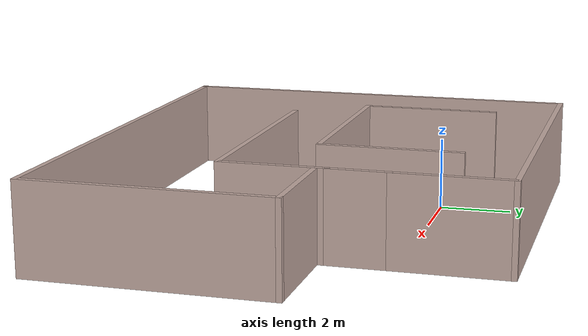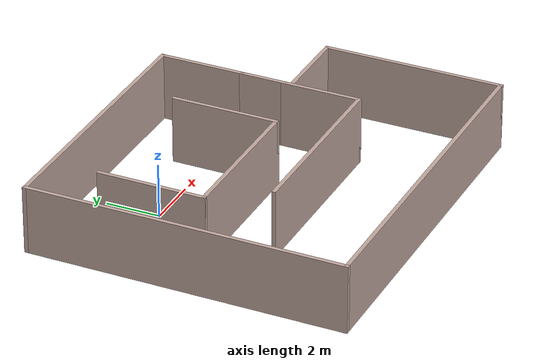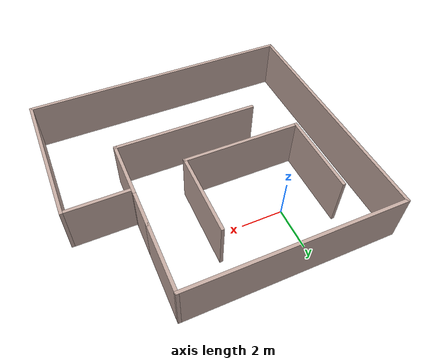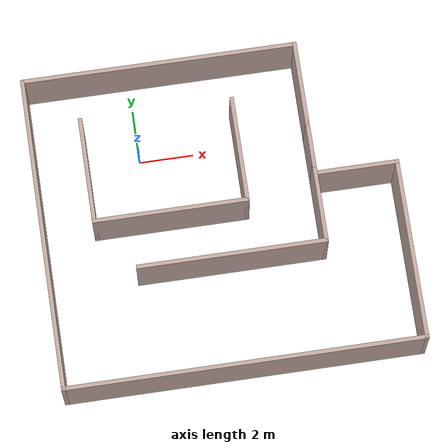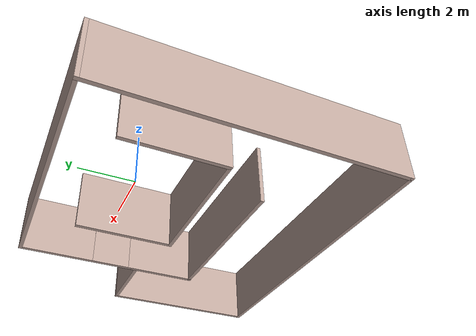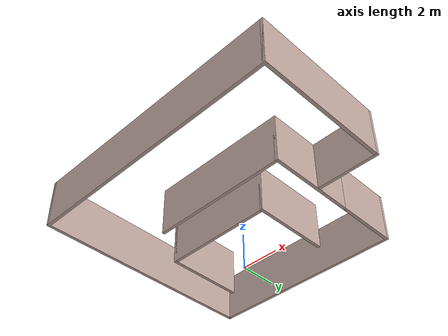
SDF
<?xml version='1.0'?>
<sdf version='1.7'>
  <model name='Untitled'>
    <pose>2.67217 -2.85261 0 0 -0 0</pose>
    <link name='Wall_10'>
      <collision name='Wall_10_Collision'>
        <geometry>
          <box>
            <size>11.75 0.15 2.5</size>
          </box>
        </geometry>
        <pose>0 0 1.25 0 -0 0</pose>
      </collision>
      <visual name='Wall_10_Visual'>
        <pose>0 0 1.25 0 -0 0</pose>
        <geometry>
          <box>
            <size>11.75 0.15 2.5</size>
          </box>
        </geometry>
        <material>
          <script>
            <uri>file://media/materials/scripts/gazebo.material</uri>
            <name>Gazebo/Grey</name>
          </script>
          <ambient>0.760784 0.662745 0.627451 1</ambient>
        </material>
        <meta>
          <layer>0</layer>
        </meta>
      </visual>
      <pose>-6.55 0 0 0 -0 -1.5708</pose>
    </link>
    <link name='Wall_11'>
      <collision name='Wall_11_Collision'>
        <geometry>
          <box>
            <size>13.25 0.15 2.5</size>
          </box>
        </geometry>
        <pose>0 0 1.25 0 -0 0</pose>
      </collision>
      <visual name='Wall_11_Visual'>
        <pose>0 0 1.25 0 -0 0</pose>
        <geometry>
          <box>
            <size>13.25 0.15 2.5</size>
          </box>
        </geometry>
        <material>
          <script>
            <uri>file://media/materials/scripts/gazebo.material</uri>
            <name>Gazebo/Grey</name>
          </script>
          <ambient>0.760784 0.662745 0.627451 1</ambient>
        </material>
        <meta>
          <layer>0</layer>
        </meta>
      </visual>
      <pose>0 -5.8 0 0 -0 0</pose>
    </link>
    <link name='Wall_12'>
      <collision name='Wall_12_Collision'>
        <geometry>
          <box>
            <size>6.75 0.15 2.5</size>
          </box>
        </geometry>
        <pose>0 0 1.25 0 -0 0</pose>
      </collision>
      <visual name='Wall_12_Visual'>
        <pose>0 0 1.25 0 -0 0</pose>
        <geometry>
          <box>
            <size>6.75 0.15 2.5</size>
          </box>
        </geometry>
        <material>
          <script>
            <uri>file://media/materials/scripts/gazebo.material</uri>
            <name>Gazebo/Grey</name>
          </script>
          <ambient>0.760784 0.662745 0.627451 1</ambient>
        </material>
        <meta>
          <layer>0</layer>
        </meta>
      </visual>
      <pose>6.55 -2.5 0 0 -0 1.5708</pose>
    </link>
    <link name='Wall_13'>
      <collision name='Wall_13_Collision'>
        <geometry>
          <box>
            <size>3 0.15 2.5</size>
          </box>
        </geometry>
        <pose>0 0 1.25 0 -0 0</pose>
      </collision>
      <visual name='Wall_13_Visual'>
        <pose>0 0 1.25 0 -0 0</pose>
        <geometry>
          <box>
            <size>3 0.15 2.5</size>
          </box>
        </geometry>
        <material>
          <script>
            <uri>file://media/materials/scripts/gazebo.material</uri>
            <name>Gazebo/Grey</name>
          </script>
          <ambient>0.760784 0.662745 0.627451 1</ambient>
        </material>
        <meta>
          <layer>0</layer>
        </meta>
      </visual>
      <pose>5.125 0.8 0 0 -0 3.14159</pose>
    </link>
    <link name='Wall_15'>
      <collision name='Wall_15_Collision'>
        <geometry>
          <box>
            <size>4 0.15 2.5</size>
          </box>
        </geometry>
        <pose>0 0 1.25 0 -0 0</pose>
      </collision>
      <visual name='Wall_15_Visual'>
        <pose>0 0 1.25 0 -0 0</pose>
        <geometry>
          <box>
            <size>4 0.15 2.5</size>
          </box>
        </geometry>
        <material>
          <script>
            <uri>file://media/materials/scripts/gazebo.material</uri>
            <name>Gazebo/Grey</name>
          </script>
          <ambient>0.760784 0.662745 0.627451 1</ambient>
        </material>
        <meta>
          <layer>0</layer>
        </meta>
      </visual>
      <pose>-4.6463 2.10211 0 0 -0 -1.5708</pose>
    </link>
    <link name='Wall_16'>
      <collision name='Wall_16_Collision'>
        <geometry>
          <box>
            <size>5.75 0.15 2.5</size>
          </box>
        </geometry>
        <pose>0 0 1.25 0 -0 0</pose>
      </collision>
      <visual name='Wall_16_Visual'>
        <pose>0 0 1.25 0 -0 0</pose>
        <geometry>
          <box>
            <size>5.75 0.15 2.5</size>
          </box>
        </geometry>
        <material>
          <script>
            <uri>file://media/materials/scripts/gazebo.material</uri>
            <name>Gazebo/Grey</name>
          </script>
          <ambient>0.760784 0.662745 0.627451 1</ambient>
        </material>
        <meta>
          <layer>0</layer>
        </meta>
      </visual>
      <pose>-1.8463 0.17711 0 0 -0 0</pose>
    </link>
    <link name='Wall_17'>
      <collision name='Wall_17_Collision'>
        <geometry>
          <box>
            <size>4 0.15 2.5</size>
          </box>
        </geometry>
        <pose>0 0 1.25 0 -0 0</pose>
      </collision>
      <visual name='Wall_17_Visual'>
        <pose>0 0 1.25 0 -0 0</pose>
        <geometry>
          <box>
            <size>4 0.15 2.5</size>
          </box>
        </geometry>
        <material>
          <script>
            <uri>file://media/materials/scripts/gazebo.material</uri>
            <name>Gazebo/Grey</name>
          </script>
          <ambient>0.760784 0.662745 0.627451 1</ambient>
        </material>
        <meta>
          <layer>0</layer>
        </meta>
      </visual>
      <pose>0.953698 2.10211 0 0 -0 1.5708</pose>
    </link>
    <link name='Wall_3'>
      <collision name='Wall_3_Collision'>
        <geometry>
          <box>
            <size>7 0.15 2.5</size>
          </box>
        </geometry>
        <pose>0 0 1.25 0 -0 0</pose>
      </collision>
      <visual name='Wall_3_Visual'>
        <pose>0 0 1.25 0 -0 0</pose>
        <geometry>
          <box>
            <size>7 0.15 2.5</size>
          </box>
        </geometry>
        <material>
          <script>
            <uri>file://media/materials/scripts/gazebo.material</uri>
            <name>Gazebo/Grey</name>
          </script>
          <ambient>0.760784 0.662745 0.627451 1</ambient>
        </material>
        <meta>
          <layer>0</layer>
        </meta>
      </visual>
      <pose>0.125 -1.75 0 0 -0 0</pose>
    </link>
    <link name='Wall_4'>
      <collision name='Wall_4_Collision'>
        <geometry>
          <box>
            <size>3 0.15 2.5</size>
          </box>
        </geometry>
        <pose>0 0 1.25 0 -0 0</pose>
      </collision>
      <visual name='Wall_4_Visual'>
        <pose>0 0 1.25 0 -0 0</pose>
        <geometry>
          <box>
            <size>3 0.15 2.5</size>
          </box>
        </geometry>
        <material>
          <script>
            <uri>file://media/materials/scripts/gazebo.material</uri>
            <name>Gazebo/Grey</name>
          </script>
          <ambient>0.760784 0.662745 0.627451 1</ambient>
        </material>
        <meta>
          <layer>0</layer>
        </meta>
      </visual>
      <pose>3.55 -0.325 0 0 -0 1.5708</pose>
    </link>
    <link name='Wall_7'>
      <collision name='Wall_7_Collision'>
        <geometry>
          <box>
            <size>1.75 0.15 2.5</size>
          </box>
        </geometry>
        <pose>0 0 1.25 0 -0 0</pose>
      </collision>
      <visual name='Wall_7_Visual'>
        <pose>0 0 1.25 0 -0 0</pose>
        <geometry>
          <box>
            <size>1.75 0.15 2.5</size>
          </box>
        </geometry>
        <material>
          <script>
            <uri>file://media/materials/scripts/gazebo.material</uri>
            <name>Gazebo/Grey</name>
          </script>
          <ambient>0.760784 0.662745 0.627451 1</ambient>
        </material>
        <meta>
          <layer>0</layer>
        </meta>
      </visual>
      <pose>3.55 1.9 0 0 -0 1.5708</pose>
    </link>
    <link name='Wall_8'>
      <collision name='Wall_8_Collision'>
        <geometry>
          <box>
            <size>3.25 0.15 2.5</size>
          </box>
        </geometry>
        <pose>0 0 1.25 0 -0 0</pose>
      </collision>
      <visual name='Wall_8_Visual'>
        <pose>0 0 1.25 0 -0 0</pose>
        <geometry>
          <box>
            <size>3.25 0.15 2.5</size>
          </box>
        </geometry>
        <material>
          <script>
            <uri>file://media/materials/scripts/gazebo.material</uri>
            <name>Gazebo/Grey</name>
          </script>
          <ambient>0.760784 0.662745 0.627451 1</ambient>
        </material>
        <meta>
          <layer>0</layer>
        </meta>
      </visual>
      <pose>3.55 4.25 0 0 -0 1.5708</pose>
    </link>
    <link name='Wall_9'>
      <collision name='Wall_9_Collision'>
        <geometry>
          <box>
            <size>10.25 0.15 2.5</size>
          </box>
        </geometry>
        <pose>0 0 1.25 0 -0 0</pose>
      </collision>
      <visual name='Wall_9_Visual'>
        <pose>0 0 1.25 0 -0 0</pose>
        <geometry>
          <box>
            <size>10.25 0.15 2.5</size>
          </box>
        </geometry>
        <material>
          <script>
            <uri>file://media/materials/scripts/gazebo.material</uri>
            <name>Gazebo/Grey</name>
          </script>
          <ambient>0.760784 0.662745 0.627451 1</ambient>
        </material>
        <meta>
          <layer>0</layer>
        </meta>
      </visual>
      <pose>-1.5 5.8 0 0 -0 3.14159</pose>
    </link>
    <static>1</static>
  </model>
</sdf>
